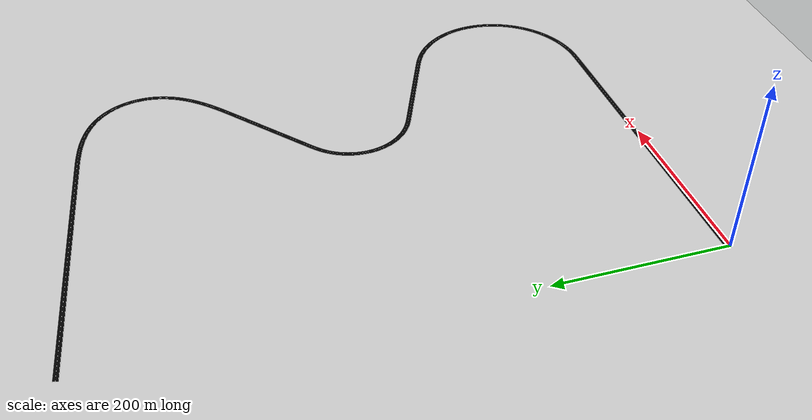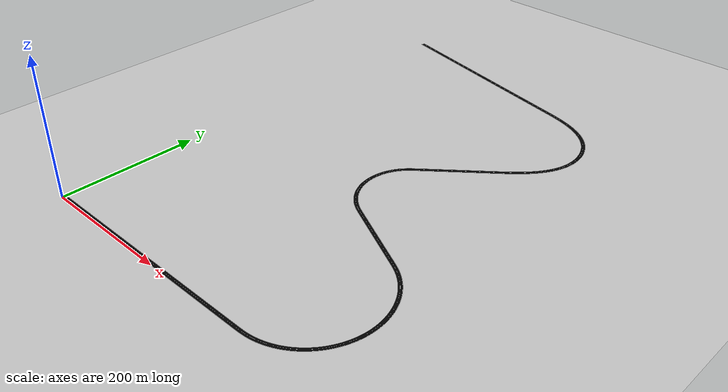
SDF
<sdf version="1.6">
 <world name="default">
  <model name="ground_plane">
   <pose>-500 0 0 0 -0 0</pose>
   <static>1</static>
   <link name="link">
    <collision name="collision">
     <geometry><plane><normal>0 0 1</normal><size>100 100</size></plane></geometry>
     <surface>
      <contact><collide_bitmask>65535</collide_bitmask></contact>
      <friction><ode><mu>100</mu><mu2>50</mu2></ode></friction>
     </surface>
    </collision>
    <visual name="visual">
     <cast_shadows>0</cast_shadows>
     <geometry><plane><normal>0 0 1</normal><size>100 100</size></plane></geometry>
     <material>
      <script><uri>file://media/materials/scripts/gazebo.material</uri><name>Gazebo/Grey</name></script>
     </material>
    </visual>
   </link>
  </model>
  <light name="sun" type="directional">
   <pose>0 0 10 0 -0 0</pose>
   <diffuse>0.8 0.8 0.8 1</diffuse>
   <specular>0.2 0.2 0.2 1</specular>
   <attenuation>
    <range>1000</range>
    <constant>0.9</constant>
    <linear>0.01</linear>
    <quadratic>0.001</quadratic>
   </attenuation>
   <direction>-0.5 0.1 -0.9</direction>
  </light>
  <model name="Table1">
   <link name="table">
    <inertial>
     <mass>10000</mass>
     <inertia>
      <ixx>1.33333e+06</ixx>
      <ixy>0</ixy>
      <ixz>0</ixz>
      <iyy>4.33333e+06</iyy>
      <iyz>0</iyz>
      <izz>3e+06</izz>
     </inertia>
    </inertial>
    <collision name="collision_table">
     <geometry><mesh><uri>file://Table/meshes/path2.dae</uri></mesh></geometry>
     <surface><friction><ode><mu>100</mu><mu2>50</mu2></ode></friction></surface>
    </collision>
    <visual name="visual_table">
     <geometry><mesh><uri>file://Table/meshes/path2.dae</uri></mesh></geometry>
    </visual>
   </link>
   <pose>0 0 -0 4.2e-05 -3.2e-05 0</pose>
  </model>
  <gravity>0 0 -9.8</gravity>
  <magnetic_field>6e-06 2.3e-05 -4.2e-05</magnetic_field>
  <atmosphere type="adiabatic"/>
  <physics name="default_physics" default="0" type="ode">
   <max_step_size>0.001</max_step_size>
   <real_time_factor>1</real_time_factor>
   <real_time_update_rate>1000</real_time_update_rate>
  </physics>
  <scene><ambient>0.4 0.4 0.4 1</ambient><background>0.7 0.7 0.7 1</background><shadows>1</shadows></scene>
  <audio><device>default</device></audio>
  <spherical_coordinates>
   <surface_model>EARTH_WGS84</surface_model>
   <latitude_deg>0</latitude_deg>
   <longitude_deg>0</longitude_deg>
   <elevation>0</elevation>
   <heading_deg>0</heading_deg>
  </spherical_coordinates>
 </world>
</sdf>
